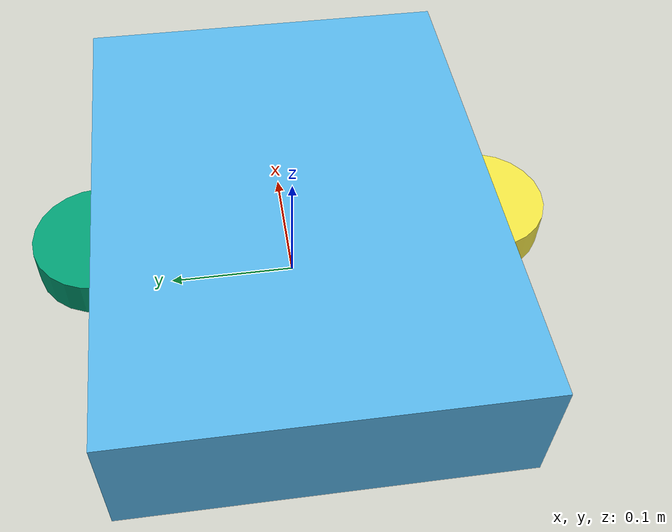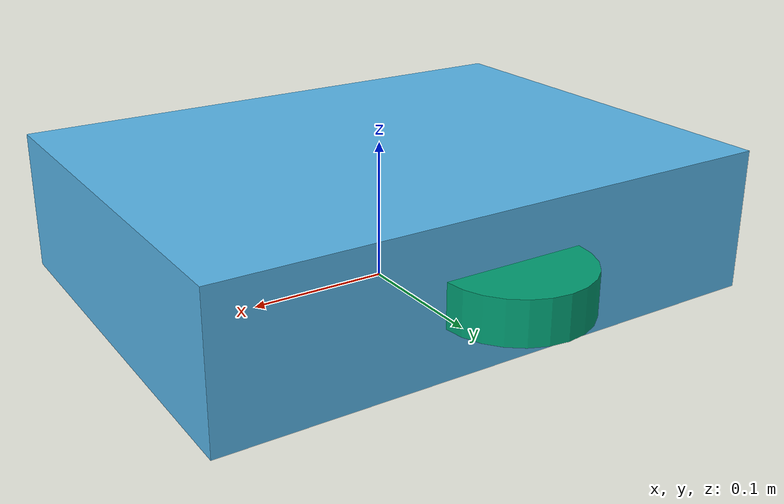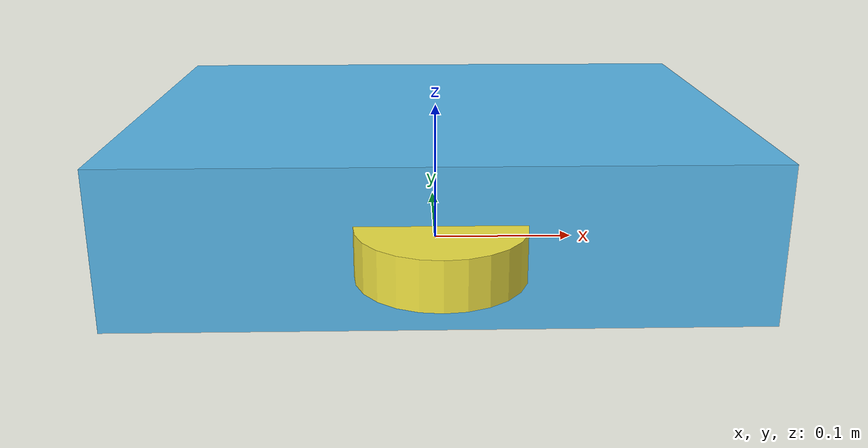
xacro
<?xml version="1.0"?>
<robot xmlns:xacro="http://www.ros.org/wiki/xacro" name="amr_robot">

  <!-- ================= CONSTANTS ================= -->
  <xacro:property name="wheel_radius" value="0.05"/>
  <xacro:property name="wheel_separation" value="0.30"/>
  <xacro:property name="base_mass" value="10.0"/>

  <!-- ================= ROOT LINK ================= -->
  <link name="base_footprint"/>

  <!-- ================= BASE LINK ================= -->
  <link name="base_link">
    <visual>
      <geometry>
        <box size="0.4 0.3 0.1"/>
      </geometry>
    </visual>
    <collision>
      <geometry>
        <box size="0.4 0.3 0.1"/>
      </geometry>
    </collision>
    <inertial>
      <mass value="${base_mass}"/>
      <inertia
        ixx="0.1"
        iyy="0.1"
        izz="0.1"
        ixy="0.0"
        ixz="0.0"
        iyz="0.0"/>
    </inertial>
  </link>

  <joint name="base_link_joint" type="fixed">
    <parent link="base_footprint"/>
    <child link="base_link"/>
    <origin xyz="0 0 0.05"/>
  </joint>

  <!-- ================= LEFT WHEEL ================= -->
  <link name="left_wheel">
    <visual>
      <geometry>
        <cylinder radius="${wheel_radius}" length="0.03"/>
      </geometry>
    </visual>
    <collision>
      <geometry>
        <cylinder radius="${wheel_radius}" length="0.03"/>
      </geometry>
    </collision>
    <inertial>
      <mass value="1.0"/>
      <inertia
        ixx="0.001"
        iyy="0.001"
        izz="0.001"
        ixy="0.0"
        ixz="0.0"
        iyz="0.0"/>
    </inertial>
  </link>

  <joint name="left_wheel_joint" type="continuous">
    <parent link="base_link"/>
    <child link="left_wheel"/>
    <origin xyz="0 0.15 0"/>
    <axis xyz="1 0 0"/>
  </joint>

  <!-- ================= RIGHT WHEEL ================= -->
  <link name="right_wheel">
    <visual>
      <geometry>
        <cylinder radius="${wheel_radius}" length="0.03"/>
      </geometry>
    </visual>
    <collision>
      <geometry>
        <cylinder radius="${wheel_radius}" length="0.03"/>
      </geometry>
    </collision>
    <inertial>
      <mass value="1.0"/>
      <inertia
        ixx="0.001"
        iyy="0.001"
        izz="0.001"
        ixy="0.0"
        ixz="0.0"
        iyz="0.0"/>
    </inertial>
  </link>

  <joint name="right_wheel_joint" type="continuous">
    <parent link="base_link"/>
    <child link="right_wheel"/>
    <origin xyz="0 -0.15 0"/>
    <axis xyz="1 0 0"/>
  </joint>

  <!-- ================= IMU ================= -->
  <link name="imu_link">
    <inertial>
      <mass value="0.1"/>
      <inertia
        ixx="0.0001"
        iyy="0.0001"
        izz="0.0001"
        ixy="0.0"
        ixz="0.0"
        iyz="0.0"/>
    </inertial>
  </link>

  <joint name="imu_joint" type="fixed">
    <parent link="base_link"/>
    <child link="imu_link"/>
    <origin xyz="0 0 0.05"/>
  </joint>

  <!-- ================= LIDAR ================= -->
  <link name="laser_link">
    <inertial>
      <mass value="0.1"/>
      <inertia
        ixx="0.0001"
        iyy="0.0001"
        izz="0.0001"
        ixy="0.0"
        ixz="0.0"
        iyz="0.0"/>
    </inertial>
  </link>

  <joint name="laser_joint" type="fixed">
    <parent link="base_link"/>
    <child link="laser_link"/>
    <origin xyz="0.15 0 0.1"/>
  </joint>

  <!-- ================= GAZEBO PLUGINS ================= -->

  <!-- Diff Drive -->
  <gazebo>
    <plugin name="diff_drive" filename="libgazebo_ros_diff_drive.so">

      <!-- Wheel joints -->
      <left_joint>left_wheel_joint</left_joint>
      <right_joint>right_wheel_joint</right_joint>

      <!-- Geometry -->
      <wheel_separation>0.30</wheel_separation>
      <wheel_radius>0.05</wheel_radius>

      <!-- ROS 2 topics -->
      <command_topic>cmd_vel</command_topic>
      <odometry_topic>odom</odometry_topic>

      <!-- Frames -->
      <odometry_frame>odom</odometry_frame>
      <robot_base_frame>base_footprint</robot_base_frame>

      <!-- Publishing -->
      <publish_odom>true</publish_odom>
      <publish_odom_tf>true</publish_odom_tf>
      <publish_wheel_tf>false</publish_wheel_tf>

      <!-- Timing -->
      <update_rate>50</update_rate>

    </plugin>
  </gazebo>

  <!-- IMU -->
  <gazebo reference="imu_link">
    <sensor name="imu_sensor" type="imu">
      <always_on>true</always_on>
      <update_rate>100</update_rate>
      <visualize>false</visualize>

      <imu>
        <angular_velocity>
          <x>
            <noise type="gaussian">
              <mean>0.0</mean>
              <stddev>0.0002</stddev>
            </noise>
          </x>
          <y>
            <noise type="gaussian">
              <mean>0.0</mean>
              <stddev>0.0002</stddev>
            </noise>
          </y>
          <z>
            <noise type="gaussian">
              <mean>0.0</mean>
              <stddev>0.0004</stddev>
            </noise>
          </z>
        </angular_velocity>

        <linear_acceleration>
          <x>
            <noise type="gaussian">
              <mean>0.0</mean>
              <stddev>0.02</stddev>
            </noise>
          </x>
          <y>
            <noise type="gaussian">
              <mean>0.0</mean>
              <stddev>0.02</stddev>
            </noise>
          </y>
          <z>
            <noise type="gaussian">
              <mean>0.0</mean>
              <stddev>0.04</stddev>
            </noise>
          </z>
        </linear_acceleration>
      </imu>

      <plugin name="imu_plugin" filename="libgazebo_ros_imu_sensor.so">
        <ros>
          <remapping>~/out:=imu/data</remapping>
        </ros>
        <frame_name>imu_link</frame_name>
      </plugin>
    </sensor>
  </gazebo>

  <!-- LIDAR -->
  <gazebo reference="laser_link">
    <plugin name="lidar_plugin" filename="libgazebo_ros_ray_sensor.so">
      <ros>
        <remapping>scan:=scan</remapping>
      </ros>
      <frame_name>laser_link</frame_name>
    </plugin>
  </gazebo>

</robot>
